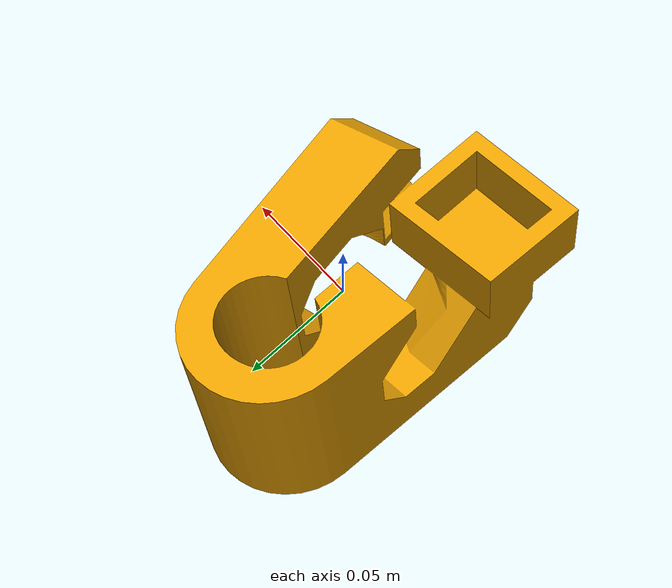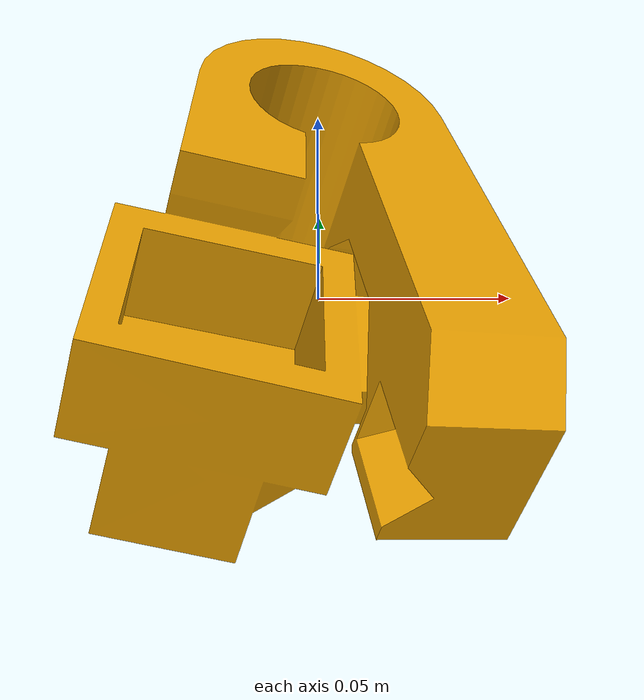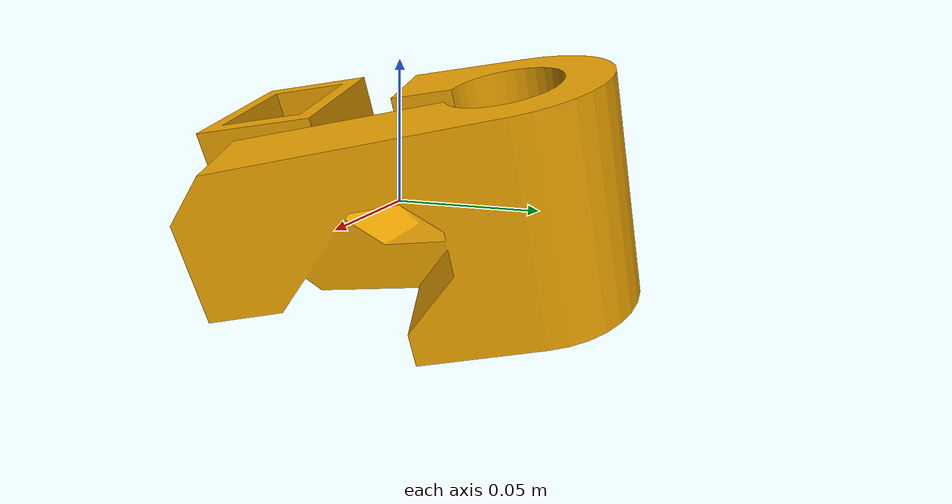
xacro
<?xml version="1.0" encoding="utf-8"?>
<robot xmlns:xacro="http://www.ros.org/wiki/xacro" name="bar_clamp">
  <link name="bar_clamp">
    <visual>
      <geometry>
	      <mesh filename="package://deep_grasp_task/meshes/objects/bar_clamp.dae"/>
	    </geometry>
    </visual>
    <collision>
      <geometry>
        <mesh filename="package://deep_grasp_task/meshes/objects/bar_clamp.dae"/>
	    </geometry>
    </collision>
	<inertial>
		<mass value="0.05"/>
		<inertia ixx="0.1" iyy="0.1" izz="0.1" ixy="0.0" ixz="0.0" iyz="0.0"/>
	</inertial>
  </link>

  <gazebo reference="bar_clamp">
      <dampingFactor>0.005</dampingFactor>
      <kp>1000000</kp>
      <kd>1.0</kd>
      <mu1>1000.0</mu1>
      <mu2>1000.0</mu2>
      <minDepth>0.001</minDepth>
  </gazebo>
</robot>
